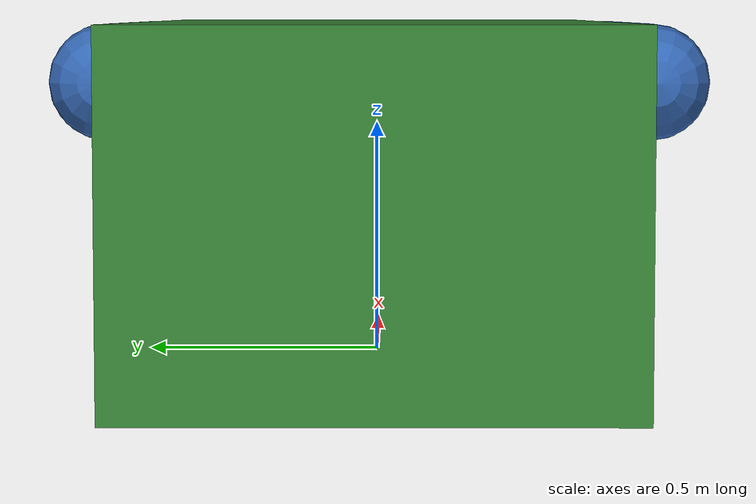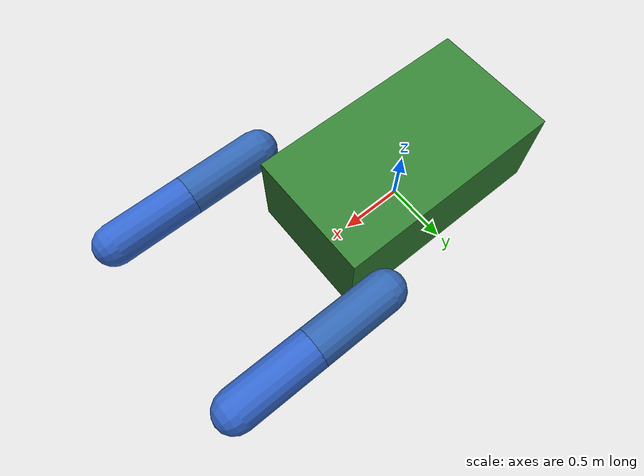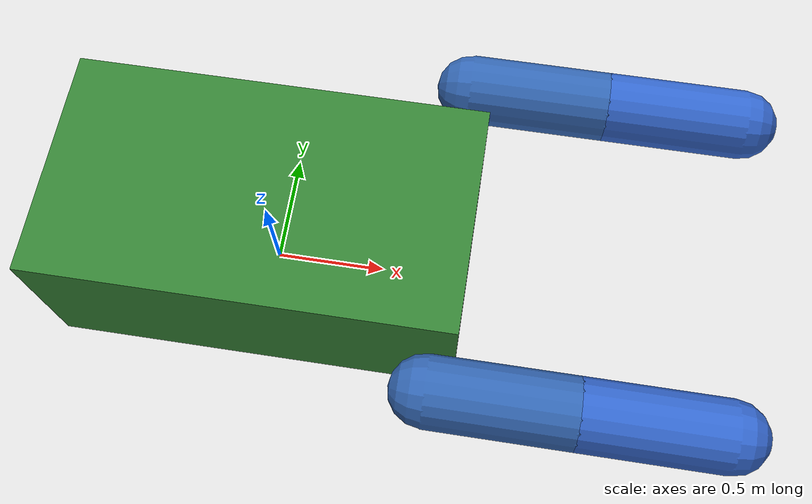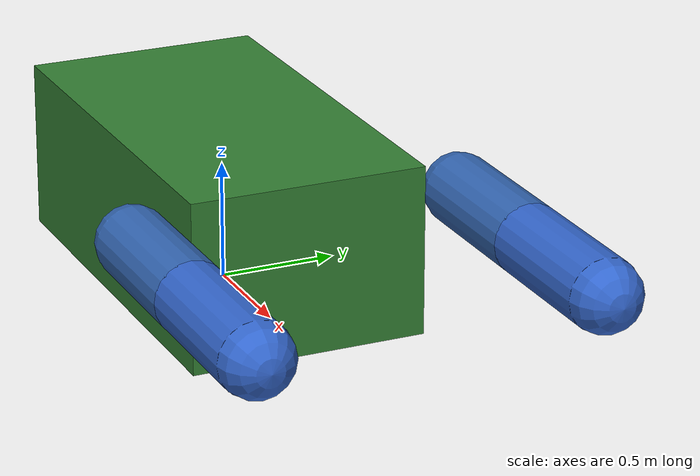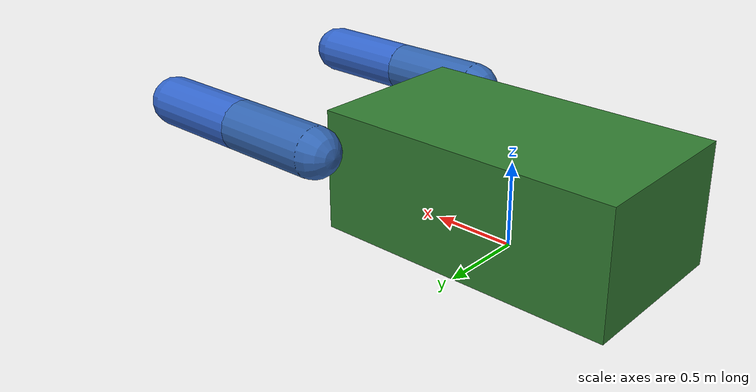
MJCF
<?xml version="1.0"?>
<mujoco model="paddle_turtle_body">

    <compiler angle="degree" coordinate="local"/>
    <option timestep="0.002" gravity="0 0 -40.81"
            iterations="50" integrator="RK4"/>

    <asset>
        <material name="site" rgba="0.1 0.8 0.1 1"/>
    </asset>

    <default>
        <geom  condim="3" contype="1" conaffinity="1" density="40"
               solref="0.005 1" solimp="0.9 0.95 0.001"
               friction="0.8 0.5 0.001" margin="0.005"
               rgba="0.3 0.6 0.3 1"/>
        <joint armature="1e-5" damping="1" limited="true"/>
        <default class="rangefinder">
            <site type="capsule" size=".005 .1"
                  material="site" group="4"/>
        </default>
    </default>

    <worldbody>
        <body name="turtle" pos="0 0 0.36">
            <joint name="root_free" type="free"/>
            <geom name="turtle_shell" type="box"
                  density = "40"
                  size="0.9 0.5 0.36"
                  rgba="0.2 0.5 0.2 1"/>
            <site name="shell_center" pos="0 0 0.08" size="0.01"/>
            <site name="rf_00" class="rangefinder"
                  fromto="0.95 0.00 0.36   -1.00 0.00 0.36"/>
            <body name="flipper_L_upper" pos="0.8 0.7 0.2">
                <joint name="shoulder_L" type="hinge" axis="0 0 1" range="0 170"/>
                <geom  type="capsule" fromto="0 0 0  0.6 0 0" size="0.15"
                       rgba="0.2 0.4 0.7 1"/>
                <body name="flipper_L_fore" pos="0.6 0 0">
                    <joint name="elbow_L" type="hinge" axis="0 0 1" range="0 80"/>
                    <geom  type="capsule" fromto="0 0 0  0.6 0 0" size="0.15"
                           rgba="0.2 0.4 0.8 1"/>
                </body>
            </body>
            <body name="flipper_R_upper" pos="0.8 -0.7 0.2">
                <joint name="shoulder_R" type="hinge" axis="0 0 -1" range="0 170"/>
                <geom  type="capsule" fromto="0 0 0  0.6 0 0" size="0.15"
                       rgba="0.2 0.4 0.7 1"/>
                <body name="flipper_R_fore" pos="0.6 0 0">
                    <joint name="elbow_R" type="hinge" axis="0 0 -1" range="0 80"/>
                    <geom  type="capsule" fromto="0 0 0  0.6 0 0" size="0.15"
                           rgba="0.2 0.4 0.8 1"/>
                </body>
            </body>
            <camera name="topdown" mode="fixed"
                    pos="0 0 20" xyaxes="0 -1 0  1 0 0"/>
        </body>
        <camera name="follow" mode="trackcom"
                pos="0 -2 0.5" xyaxes="1 0 0  0 0 1"/>
    </worldbody>

    <actuator>
        <motor name="motor_shoulder_L" joint="shoulder_L"
               gear="100" ctrlrange="-1 1" ctrllimited="true"/>
        <motor name="motor_elbow_L"    joint="elbow_L"
               gear="100" ctrlrange="-1 1" ctrllimited="true"/>
        <motor name="motor_shoulder_R" joint="shoulder_R"
               gear="100" ctrlrange="-1 1" ctrllimited="true"/>
        <motor name="motor_elbow_R"    joint="elbow_R"
               gear="100" ctrlrange="-1 1" ctrllimited="true"/>
    </actuator>

    <sensor>
        <accelerometer site="shell_center"/>
        <gyro           site="shell_center"/>
    </sensor>

</mujoco>
